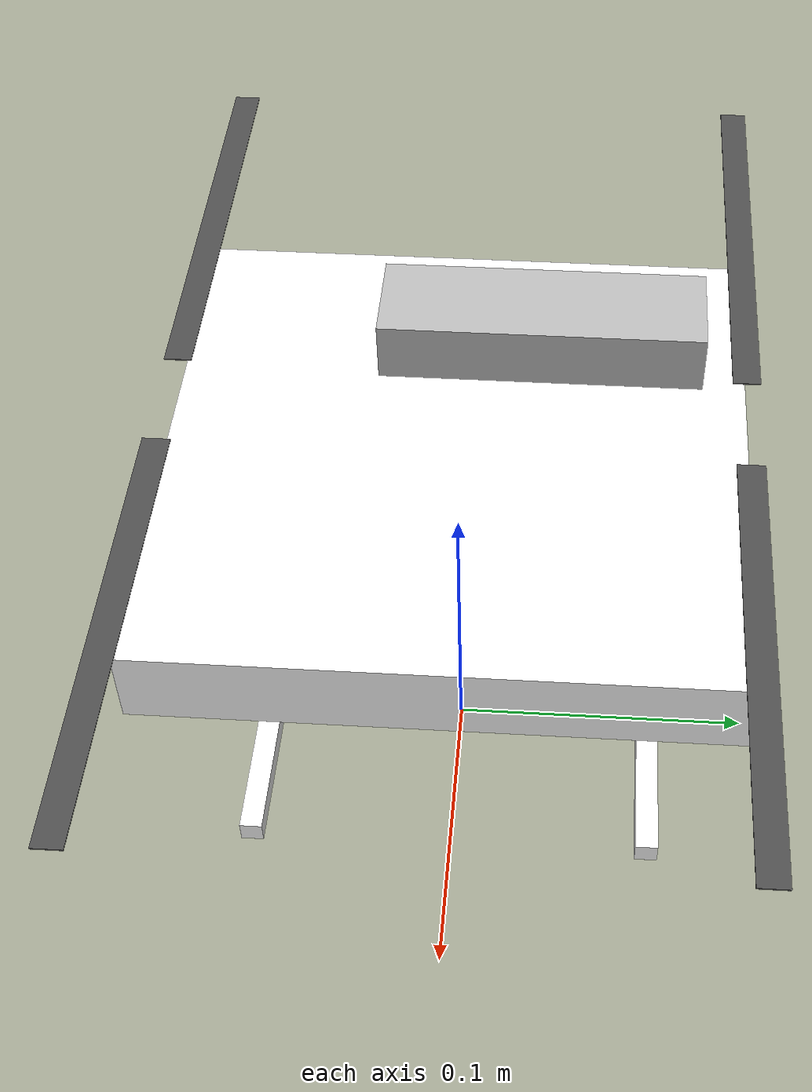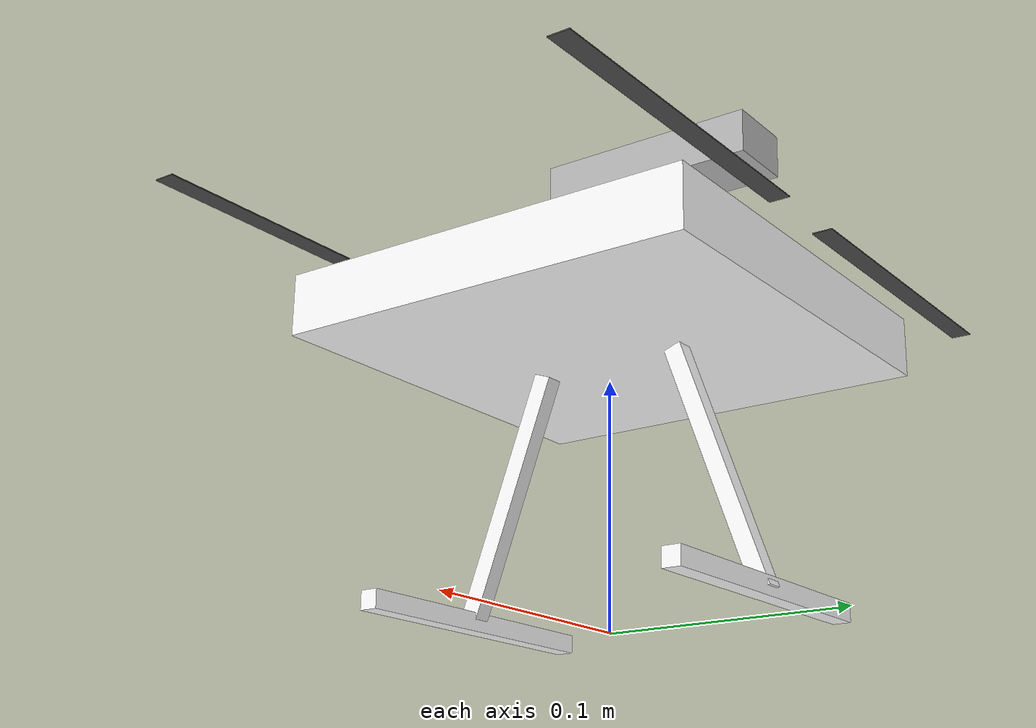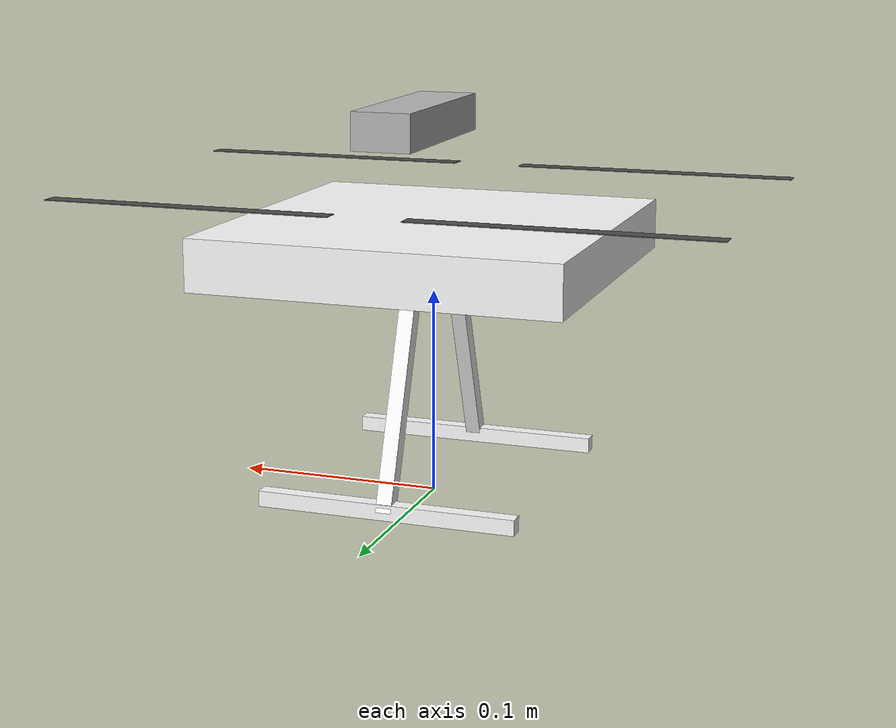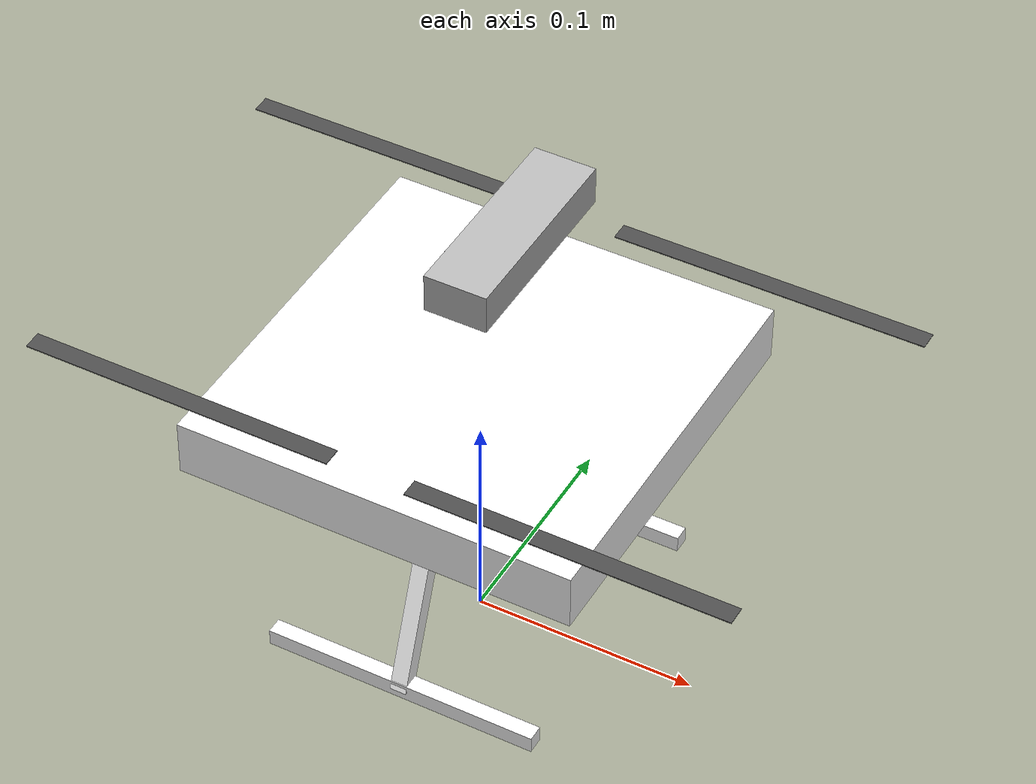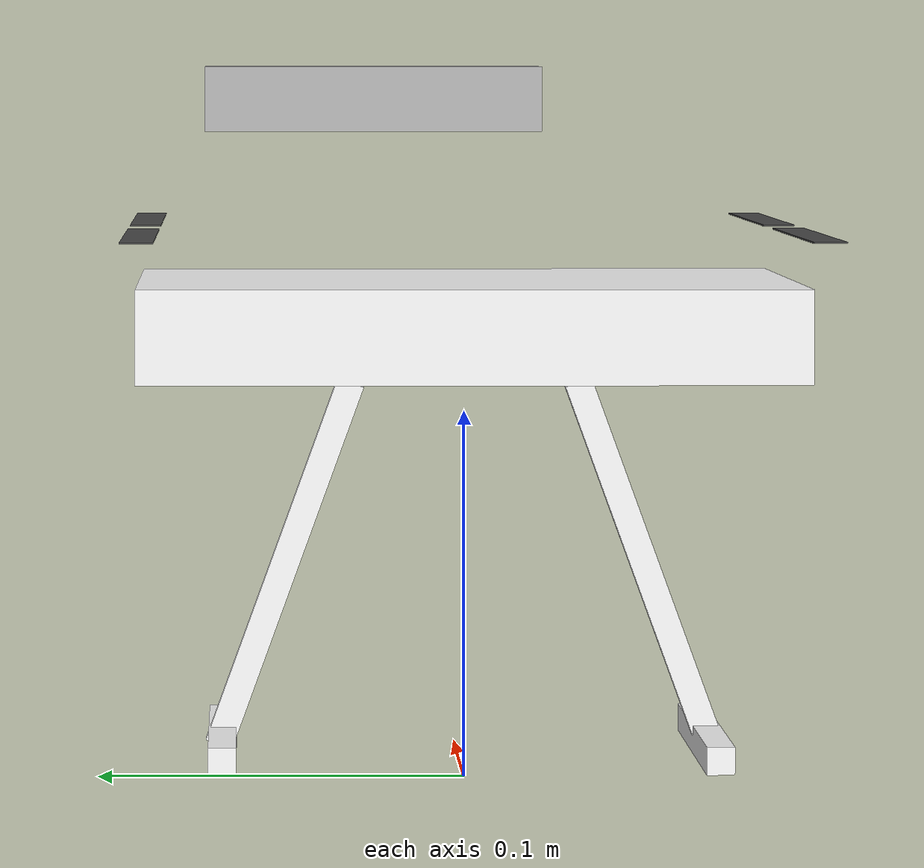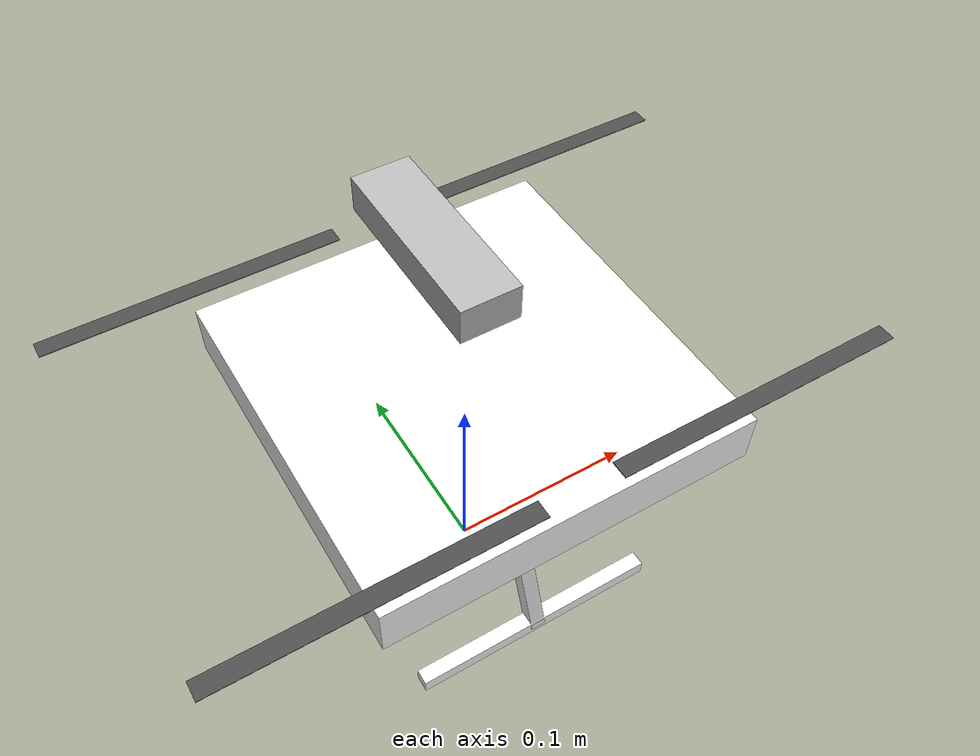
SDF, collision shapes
<?xml version="1.0" encoding="UTF-8"?>
<sdf version='1.9'>
  <model name='x500'>
    <include merge='true'>
      <uri>model://x500_base</uri>
    </include>
    <plugin filename="gz-sim-multicopter-motor-model-system" name="gz::sim::systems::MulticopterMotorModel">
      <jointName>rotor_0_joint</jointName>
      <linkName>rotor_0</linkName>
      <turningDirection>ccw</turningDirection>
      <timeConstantUp>0.0125</timeConstantUp>
      <timeConstantDown>0.025</timeConstantDown>
      <maxRotVelocity>1000.0</maxRotVelocity>
      <motorConstant>8.54858e-06</motorConstant>
      <momentConstant>0.016</momentConstant>
      <commandSubTopic>command/motor_speed</commandSubTopic>
      <motorNumber>0</motorNumber>
      <rotorDragCoefficient>8.06428e-05</rotorDragCoefficient>
      <rollingMomentCoefficient>1e-06</rollingMomentCoefficient>
      <rotorVelocitySlowdownSim>10</rotorVelocitySlowdownSim>
      <motorType>velocity</motorType>
    </plugin>
    <plugin filename="gz-sim-multicopter-motor-model-system" name="gz::sim::systems::MulticopterMotorModel">
      <jointName>rotor_1_joint</jointName>
      <linkName>rotor_1</linkName>
      <turningDirection>ccw</turningDirection>
      <timeConstantUp>0.0125</timeConstantUp>
      <timeConstantDown>0.025</timeConstantDown>
      <maxRotVelocity>1000.0</maxRotVelocity>
      <motorConstant>8.54858e-06</motorConstant>
      <momentConstant>0.016</momentConstant>
      <commandSubTopic>command/motor_speed</commandSubTopic>
      <motorNumber>1</motorNumber>
      <rotorDragCoefficient>8.06428e-05</rotorDragCoefficient>
      <rollingMomentCoefficient>1e-06</rollingMomentCoefficient>
      <rotorVelocitySlowdownSim>10</rotorVelocitySlowdownSim>
      <motorType>velocity</motorType>
    </plugin>
    <plugin filename="gz-sim-multicopter-motor-model-system" name="gz::sim::systems::MulticopterMotorModel">
      <jointName>rotor_2_joint</jointName>
      <linkName>rotor_2</linkName>
      <turningDirection>cw</turningDirection>
      <timeConstantUp>0.0125</timeConstantUp>
      <timeConstantDown>0.025</timeConstantDown>
      <maxRotVelocity>1000.0</maxRotVelocity>
      <motorConstant>8.54858e-06</motorConstant>
      <momentConstant>0.016</momentConstant>
      <commandSubTopic>command/motor_speed</commandSubTopic>
      <motorNumber>2</motorNumber>
      <rotorDragCoefficient>8.06428e-05</rotorDragCoefficient>
      <rollingMomentCoefficient>1e-06</rollingMomentCoefficient>
      <rotorVelocitySlowdownSim>10</rotorVelocitySlowdownSim>
      <motorType>velocity</motorType>
    </plugin>
    <plugin filename="gz-sim-multicopter-motor-model-system" name="gz::sim::systems::MulticopterMotorModel">
      <jointName>rotor_3_joint</jointName>
      <linkName>rotor_3</linkName>
      <turningDirection>cw</turningDirection>
      <timeConstantUp>0.0125</timeConstantUp>
      <timeConstantDown>0.025</timeConstantDown>
      <maxRotVelocity>1000.0</maxRotVelocity>
      <motorConstant>8.54858e-06</motorConstant>
      <momentConstant>0.016</momentConstant>
      <commandSubTopic>command/motor_speed</commandSubTopic>
      <motorNumber>3</motorNumber>
      <rotorDragCoefficient>8.06428e-05</rotorDragCoefficient>
      <rollingMomentCoefficient>1e-06</rollingMomentCoefficient>
      <rotorVelocitySlowdownSim>10</rotorVelocitySlowdownSim>
      <motorType>velocity</motorType>
    </plugin>
    <!-- OakD-Lite Camera Link -->
    <link name="oakd_link">
      <pose>0 0 0.1 0 0 0</pose>
      <inertial>
        <pose>0 0 0 0 0 0</pose>
        <mass>0.061</mass>
        <inertia>
          <ixx>0.0000460804</ixx>
          <ixy>0</ixy>
          <ixz>0</ixz>
          <iyy>0.0000055421</iyy>
          <iyz>0</iyz>
          <izz>0.0000436519</izz>
        </inertia>
      </inertial>

      <visual name="OakD-Lite/visual">
        <pose>0 0.025 0.085 0 -1.5708 0</pose> <!-- 0 -pi/2 0 in radians -->
        <geometry>
          <mesh>
            <scale>1 1 1</scale>
            <uri>model://OakD-Lite/meshes/OakDLite.dae</uri>
          </mesh>
        </geometry>
      </visual>

      <collision name="OakD-Lite/collision">
        <pose>0 0.025 0.085 0 -1.5708 0</pose> <!-- 0 -pi/2 0 in radians -->
        <geometry>
          <box>
            <size>0.0175 0.091 0.028</size>
          </box>
        </geometry>
      </collision>

      <!-- Left camera stereo -->
      <sensor name="IMX214_front_left" type="camera">
        <!-- left offset: y = -0.03 -->
        <pose>0.1 -0.3 -0.1 0 0 0</pose>
        <camera>
          <horizontal_fov>1.204</horizontal_fov> <!--sprawdz czy w radianach, wylicz -->
          <image>
            <width>640</width>
            <height>480</height>
          </image>
          <clip>
            <near>0.1</near>
            <far>100</far>
          </clip>
        </camera>
        <always_on>1</always_on>
        <update_rate>30</update_rate>
        <visualize>true</visualize>
        <topic>/camera_front/left/image_raw</topic>
      </sensor>

      <!-- Right camera stereo -->
      <sensor name="IMX214_front_right" type="camera">
        <!--x,y,z right offset -->
        <pose>0.1 0.3 -0.1 0 0 0</pose>
        <camera>
          <horizontal_fov>1.204</horizontal_fov>
          <image>
            <width>640</width>
            <height>480</height>
          </image>
          <clip>
            <near>0.1</near>
            <far>100</far>
          </clip>
        </camera>
        <always_on>1</always_on>
        <update_rate>30</update_rate>
        <visualize>true</visualize>
        <topic>/camera_front/right/image_raw</topic>
      </sensor>

      <!-- Nadir camera stereo -->
      <sensor name="IMX214" type="camera">
        <pose>0 0 -0.1 0 1.5708 0</pose> <!-- 0 -pi/2 0 in radians -->
        <camera>
          <horizontal_fov>1.204</horizontal_fov>
          <image>
            <width>960</width>
            <height>540</height>
          </image>
          <clip>
            <near>0.1</near>
            <far>100</far>
          </clip>
        </camera>
        <always_on>1</always_on>
        <update_rate>30</update_rate>
        <visualize>true</visualize>
        <topic>/camera/image_raw</topic>
      </sensor>

      <sensor name="StereoOV7251" type="depth_camera">
        <pose>0 0.025 0.085 0 -1.5708 0</pose> <!-- 0 -pi/2 0 in radians -->
        <camera>
          <horizontal_fov>1.274</horizontal_fov>
          <image>
            <width>640</width>
            <height>480</height>
            <format>R_FLOAT32</format>
          </image>
          <clip>
            <near>0.2</near>
            <far>19.1</far>
          </clip>
        </camera>
        <always_on>1</always_on>
        <update_rate>30</update_rate>
        <visualize>true</visualize>
        <topic>depth_camera</topic>
      </sensor>
    </link>

    <!-- Fixed joint between drone and OakD -->
    <joint name="oakd_fixed_joint" type="fixed">
      <parent>base_link</parent>
      <child>oakd_link</child>
    </joint>
  </model>
</sdf>

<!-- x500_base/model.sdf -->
<sdf version='1.9'>
  <model name='x500_base'>
    <pose>0 0 0.12 0 0 0</pose>
    <self_collide>false</self_collide>
    <static>false</static>
    <link name="base_link">
      <inertial>
        <mass>1.0</mass>
        <inertia>
          <ixx>0.005416666666666667</ixx>
          <ixy>0</ixy>
          <ixz>0</ixz>
          <iyy>0.005416666666666667</iyy>
          <iyz>0</iyz>
          <izz>0.010000000000000002</izz>
        </inertia>
      </inertial>
      <gravity>true</gravity>
      <velocity_decay/>
      <visual name="base_link_visual">
        <pose>0 0 0.0125 0 0 3.141592654</pose>
        <geometry>
          <mesh>
            <scale>0.5 0.5 0.5</scale>
            <uri>model://x500_base/meshes/NXP-HGD-CF.dae</uri>
          </mesh>
        </geometry>
      </visual>
      <visual name="5010_motor_base_0">
        <pose>0.087 0.087 0.016 0 0 -0.45</pose>
        <geometry>
          <mesh>
            <scale>0.5 0.5 0.5</scale>
            <uri>model://x500_base/meshes/5010Base.dae</uri>
          </mesh>
        </geometry>
      </visual>
      <visual name="5010_motor_base_1">
        <pose>-0.087 0.087 0.016 0 0 -0.45</pose>
        <geometry>
          <mesh>
            <scale>0.5 0.5 0.5</scale>
            <uri>model://x500_base/meshes/5010Base.dae</uri>
          </mesh>
        </geometry>
      </visual>
      <visual name="5010_motor_base_2">
        <pose>0.087 -0.087 0.016 0 0 -0.45</pose>
        <geometry>
          <mesh>
            <scale>0.5 0.5 0.5</scale>
            <uri>model://x500_base/meshes/5010Base.dae</uri>
          </mesh>
        </geometry>
      </visual>
      <visual name="5010_motor_base_3">
        <pose>-0.087 -0.087 0.016 0 0 -0.45</pose>
        <geometry>
          <mesh>
            <scale>0.5 0.5 0.5</scale>
            <uri>model://x500_base/meshes/5010Base.dae</uri>
          </mesh>
        </geometry>
      </visual>
      <visual name="NXP_FMUK66_FRONT">
        <pose>0.0235 0.0005 0.0215 1 0 1.57</pose>
        <cast_shadows>false</cast_shadows>
        <geometry>
          <plane>
            <normal>0 0 1</normal>
            <size>0.0065 0.0035</size>
          </plane>
        </geometry>
        <material>
          <diffuse>1.0 1.0 1.0</diffuse>
          <specular>1.0 1.0 1.0</specular>
          <pbr>
            <metal>
              <albedo_map>model://x500_base/materials/textures/nxp.png</albedo_map>
            </metal>
          </pbr>
        </material>
      </visual>
      <visual name="NXP_FMUK66_TOP">
        <pose>-0.0115 0 0.02575 0 0 -1.57</pose>
        <cast_shadows>false</cast_shadows>
        <geometry>
          <plane>
            <normal>0 0 1</normal>
            <size>0.0065 0.0035</size>
          </plane>
        </geometry>
        <material>
          <diffuse>1.0 1.0 1.0</diffuse>
          <specular>1.0 1.0 1.0</specular>
          <pbr>
            <metal>
              <albedo_map>model://x500_base/materials/textures/nxp.png</albedo_map>
            </metal>
          </pbr>
        </material>
      </visual>
      <visual name="RDDRONE_FMUK66_TOP">
        <pose>-0.015 0 0.02575 0 0 -1.57</pose>
        <cast_shadows>false</cast_shadows>
        <geometry>
          <plane>
            <normal>0 0 1</normal>
            <size>0.016 0.0017</size>
          </plane>
        </geometry>
        <material>
          <diffuse>1.0 1.0 1.0</diffuse>
          <specular>1.0 1.0 1.0</specular>
          <pbr>
            <metal>
              <albedo_map>model://x500_base/materials/textures/rd.png</albedo_map>
            </metal>
          </pbr>
        </material>
      </visual>
      <collision name="base_link_collision_0">
        <pose>0 0 0.0035 0 0 0</pose>
        <geometry>
          <box>
            <size>0.17677669529663686 0.17677669529663686 0.025</size>
          </box>
        </geometry>
        <surface>
          <contact>
            <ode>
              <min_depth>0.001</min_depth>
              <max_vel>0</max_vel>
            </ode>
          </contact>
          <friction>
            <ode/>
          </friction>
        </surface>
      </collision>
      <collision name="base_link_collision_1">
        <pose>0 -0.049 -0.0615 -0.35 0 0</pose>
        <geometry>
          <box>
            <size>0.0075 0.0075 0.105</size>
          </box>
        </geometry>
        <surface>
          <contact>
            <ode>
              <min_depth>0.001</min_depth>
              <max_vel>0</max_vel>
            </ode>
          </contact>
          <friction>
            <ode/>
          </friction>
        </surface>
      </collision>
      <collision name="base_link_collision_2">
        <pose>0 0.049 -0.0615 0.35 0 0</pose>
        <geometry>
          <box>
            <size>0.0075 0.0075 0.105</size>
          </box>
        </geometry>
        <surface>
          <contact>
            <ode>
              <min_depth>0.001</min_depth>
              <max_vel>0</max_vel>
            </ode>
          </contact>
          <friction>
            <ode/>
          </friction>
        </surface>
      </collision>
      <collision name="base_link_collision_3">
        <pose>0 -0.066 -0.10975 0 0 0</pose>
        <geometry>
          <box>
            <size>0.125 0.0075 0.0075</size>
          </box>
        </geometry>
        <surface>
          <contact>
            <ode>
              <min_depth>0.001</min_depth>
              <max_vel>0</max_vel>
            </ode>
          </contact>
          <friction>
            <ode/>
          </friction>
        </surface>
      </collision>
      <collision name="base_link_collision_4">
        <pose>0 0.066 -0.10975 0 0 0</pose>
        <geometry>
          <box>
            <size>0.125 0.0075 0.0075</size>
          </box>
        </geometry>
        <surface>
          <contact>
            <ode>
              <min_depth>0.001</min_depth>
              <max_vel>0</max_vel>
            </ode>
          </contact>
          <friction>
            <ode/>
          </friction>
        </surface>
      </collision>
      <sensor name="air_pressure_sensor" type="air_pressure">
        <always_on>1</always_on>
        <update_rate>50</update_rate>
        <air_pressure>
          <pressure>
            <noise type="gaussian">
              <mean>0</mean>
              <stddev>0.01</stddev>
            </noise>
          </pressure>
        </air_pressure>
      </sensor>
      <sensor name="imu_sensor" type="imu">
        <always_on>1</always_on>
        <update_rate>250</update_rate>
        <imu>
          <angular_velocity>
            <x>
              <noise type="gaussian">
                <mean>0</mean>
                <stddev>0.00018665</stddev>
                <dynamic_bias_stddev>3.8785e-05</dynamic_bias_stddev>
                <dynamic_bias_correlation_time>1000</dynamic_bias_correlation_time>
              </noise>
            </x>
            <y>
              <noise type="gaussian">
                <mean>0</mean>
                <stddev>0.00018665</stddev>
                <dynamic_bias_stddev>3.8785e-05</dynamic_bias_stddev>
                <dynamic_bias_correlation_time>1000</dynamic_bias_correlation_time>
              </noise>
            </y>
            <z>
              <noise type="gaussian">
                <mean>0</mean>
                <stddev>0.00018665</stddev>
                <dynamic_bias_stddev>3.8785e-05</dynamic_bias_stddev>
                <dynamic_bias_correlation_time>1000</dynamic_bias_correlation_time>
              </noise>
            </z>
          </angular_velocity>
          <linear_acceleration>
            <x>
              <noise type="gaussian">
                <mean>0</mean>
                <stddev>0.00186</stddev>
                <dynamic_bias_stddev>0.006</dynamic_bias_stddev>
                <dynamic_bias_correlation_time>300</dynamic_bias_correlation_time>
              </noise>
            </x>
            <y>
              <noise type="gaussian">
                <mean>0</mean>
                <stddev>0.00186</stddev>
                <dynamic_bias_stddev>0.006</dynamic_bias_stddev>
                <dynamic_bias_correlation_time>300</dynamic_bias_correlation_time>
              </noise>
            </y>
            <z>
              <noise type="gaussian">
                <mean>0</mean>
                <stddev>0.00186</stddev>
                <dynamic_bias_stddev>0.006</dynamic_bias_stddev>
                <dynamic_bias_correlation_time>300</dynamic_bias_correlation_time>
              </noise>
            </z>
          </linear_acceleration>
        </imu>
      </sensor>
      <sensor name="navsat_sensor" type="navsat">
        <always_on>1</always_on>
        <update_rate>30</update_rate>
      </sensor>
    </link>
    <link name="rotor_0">
      <gravity>true</gravity>
      <self_collide>false</self_collide>
      <velocity_decay/>
      <pose>0.087 -0.087 0.03 0 0 0</pose>
      <inertial>
          <mass>0.008038461538461538</mass>
          <inertia>
            <ixx>9.616227620998331e-08</ixx>
            <iyy>6.528962922925001e-06</iyy>
            <izz>6.62464558678501e-06</izz>
          </inertia>
        </inertial>
      <visual name="rotor_0_visual">
        <pose>-0.011 -0.07319230769230769 -0.008 0 0 0</pose>
        <geometry>
          <mesh>
            <scale>0.4230769230769231 0.4230769230769231 0.4230769230769231</scale>
            <uri>model://x500_base/meshes/1345_prop_ccw.stl</uri>
          </mesh>
        </geometry>
        <material>
          <script>
            <name>Gazebo/DarkGrey</name>
            <uri>file://media/materials/scripts/gazebo.material</uri>
          </script>
        </material>
      </visual>
      <visual name="rotor_0_visual_motor_bell">
        <pose>0 0 -0.016 0 0 0</pose>
        <geometry>
          <mesh>
            <scale>0.5 0.5 0.5</scale>
            <uri>model://x500_base/meshes/5010Bell.dae</uri>
          </mesh>
        </geometry>
      </visual>
      <collision name="rotor_0_collision">
        <pose>0 0 0 0 0 0 </pose>
        <geometry>
          <box>
            <size>0.1396153846153846 0.008461538461538461 0.0004230769230769231</size>
          </box>
        </geometry>
        <surface>
          <contact>
            <ode>
              <min_depth>0.001</min_depth>
              <max_vel>0</max_vel>
            </ode>
          </contact>
          <friction>
            <ode/>
          </friction>
        </surface>
      </collision>
    </link>
    <joint name="rotor_0_joint" type="revolute">
      <parent>base_link</parent>
      <child>rotor_0</child>
      <axis>
        <xyz>0 0 1</xyz>
        <limit>
          <lower>-1e+16</lower>
          <upper>1e+16</upper>
        </limit>
        <dynamics>
          <spring_reference>0</spring_reference>
          <spring_stiffness>0</spring_stiffness>
        </dynamics>
      </axis>
    </joint>
    <link name="rotor_1">
      <gravity>true</gravity>
      <self_collide>false</self_collide>
      <velocity_decay/>
      <pose>-0.087 0.087 0.03 0 0 0</pose>
      <inertial>
          <mass>0.008038461538461538</mass>
          <inertia>
            <ixx>9.616227620998331e-08</ixx>
            <iyy>6.528962922925001e-06</iyy>
            <izz>6.62464558678501e-06</izz>
          </inertia>
        </inertial>
      <visual name="rotor_1_visual">
        <pose>-0.011 -0.07319230769230769 -0.008 0 0 0</pose>
        <geometry>
          <mesh>
            <scale>0.4230769230769231 0.4230769230769231 0.4230769230769231</scale>
            <uri>model://x500_base/meshes/1345_prop_ccw.stl</uri>
          </mesh>
        </geometry>
        <material>
          <script>
            <name>Gazebo/DarkGrey</name>
            <uri>file://media/materials/scripts/gazebo.material</uri>
          </script>
        </material>
      </visual>
      <visual name="rotor_1_visual_motor_top">
        <pose>0 0 -0.016 0 0 0</pose>
        <geometry>
          <mesh>
            <scale>0.5 0.5 0.5</scale>
            <uri>model://x500_base/meshes/5010Bell.dae</uri>
          </mesh>
        </geometry>
      </visual>
      <collision name="rotor_1_collision">
        <pose>0 0 0 0 0 0 </pose>
        <geometry>
          <box>
            <size>0.1396153846153846 0.008461538461538461 0.0004230769230769231</size>
          </box>
        </geometry>
        <surface>
          <contact>
            <ode>
              <min_depth>0.001</min_depth>
              <max_vel>0</max_vel>
            </ode>
          </contact>
          <friction>
            <ode/>
          </friction>
        </surface>
      </collision>
    </link>
    <joint name="rotor_1_joint" type="revolute">
      <parent>base_link</parent>
      <child>rotor_1</child>
      <axis>
        <xyz>0 0 1</xyz>
        <limit>
          <lower>-1e+16</lower>
          <upper>1e+16</upper>
        </limit>
        <dynamics>
          <spring_reference>0</spring_reference>
          <spring_stiffness>0</spring_stiffness>
        </dynamics>
      </axis>
    </joint>
    <link name="rotor_2">
      <gravity>true</gravity>
      <self_collide>false</self_collide>
      <velocity_decay/>
      <pose>0.087 0.087 0.03 0 0 0</pose>
      <inertial>
          <mass>0.008038461538461538</mass>
          <inertia>
            <ixx>9.616227620998331e-08</ixx>
            <iyy>6.528962922925001e-06</iyy>
            <izz>6.62464558678501e-06</izz>
          </inertia>
        </inertial>
      <visual name="rotor_2_visual">
        <pose>-0.011 -0.07319230769230769 -0.008 0 0 0</pose>
        <geometry>
          <mesh>
            <scale>0.4230769230769231 0.4230769230769231 0.4230769230769231</scale>
            <uri>model://x500_base/meshes/1345_prop_cw.stl</uri>
          </mesh>
        </geometry>
        <material>
          <script>
            <name>Gazebo/DarkGrey</name>
            <uri>file://media/materials/scripts/gazebo.material</uri>
          </script>
        </material>
      </visual>
      <visual name="rotor_2_visual_motor_top">
        <pose>0 0 -0.016 0 0 0</pose>
        <geometry>
          <mesh>
            <scale>0.5 0.5 0.5</scale>
            <uri>model://x500_base/meshes/5010Bell.dae</uri>
          </mesh>
        </geometry>
      </visual>
      <collision name="rotor_2_collision">
        <pose>0 0 0 0 0 0 </pose>
        <geometry>
          <box>
            <size>0.1396153846153846 0.008461538461538461 0.0004230769230769231</size>
          </box>
        </geometry>
        <surface>
          <contact>
            <ode>
              <min_depth>0.001</min_depth>
              <max_vel>0</max_vel>
            </ode>
          </contact>
          <friction>
            <ode/>
          </friction>
        </surface>
      </collision>
    </link>
    <joint name="rotor_2_joint" type="revolute">
      <parent>base_link</parent>
      <child>rotor_2</child>
      <axis>
        <xyz>0 0 1</xyz>
        <limit>
          <lower>-1e+16</lower>
          <upper>1e+16</upper>
        </limit>
        <dynamics>
          <spring_reference>0</spring_reference>
          <spring_stiffness>0</spring_stiffness>
        </dynamics>
      </axis>
    </joint>
    <link name="rotor_3">
      <gravity>true</gravity>
      <self_collide>false</self_collide>
      <velocity_decay/>
      <pose>-0.087 -0.087 0.03 0 0 0</pose>
      <inertial>
          <mass>0.008038461538461538</mass>
          <inertia>
            <ixx>9.616227620998331e-08</ixx>
            <iyy>6.528962922925001e-06</iyy>
            <izz>6.62464558678501e-06</izz>
          </inertia>
        </inertial>
      <visual name="rotor_3_visual">
        <pose>-0.011 -0.07319230769230769 -0.008 0 0 0</pose>
        <geometry>
          <mesh>
            <scale>0.4230769230769231 0.4230769230769231 0.4230769230769231</scale>
            <uri>model://x500_base/meshes/1345_prop_cw.stl</uri>
          </mesh>
        </geometry>
        <material>
          <script>
            <name>Gazebo/DarkGrey</name>
            <uri>file://media/materials/scripts/gazebo.material</uri>
          </script>
        </material>
      </visual>
      <visual name="rotor_3_visual_motor_top">
        <pose>0 0 -0.016 0 0 0</pose>
        <geometry>
          <mesh>
            <scale>0.5 0.5 0.5</scale>
            <uri>model://x500_base/meshes/5010Bell.dae</uri>
          </mesh>
        </geometry>
      </visual>
      <collision name="rotor_3_collision">
        <pose>0 0 0 0 0 0 </pose>
        <geometry>
          <box>
            <size>0.1396153846153846 0.008461538461538461 0.0004230769230769231</size>
          </box>
        </geometry>
        <surface>
          <contact>
            <ode>
              <min_depth>0.001</min_depth>
              <max_vel>0</max_vel>
            </ode>
          </contact>
          <friction>
            <ode/>
          </friction>
        </surface>
      </collision>
    </link>
    <joint name="rotor_3_joint" type="revolute">
      <parent>base_link</parent>
      <child>rotor_3</child>
      <axis>
        <xyz>0 0 1</xyz>
        <limit>
          <lower>-1e+16</lower>
          <upper>1e+16</upper>
        </limit>
        <dynamics>
          <spring_reference>0</spring_reference>
          <spring_stiffness>0</spring_stiffness>
        </dynamics>
      </axis>
    </joint>
  </model>
</sdf>
